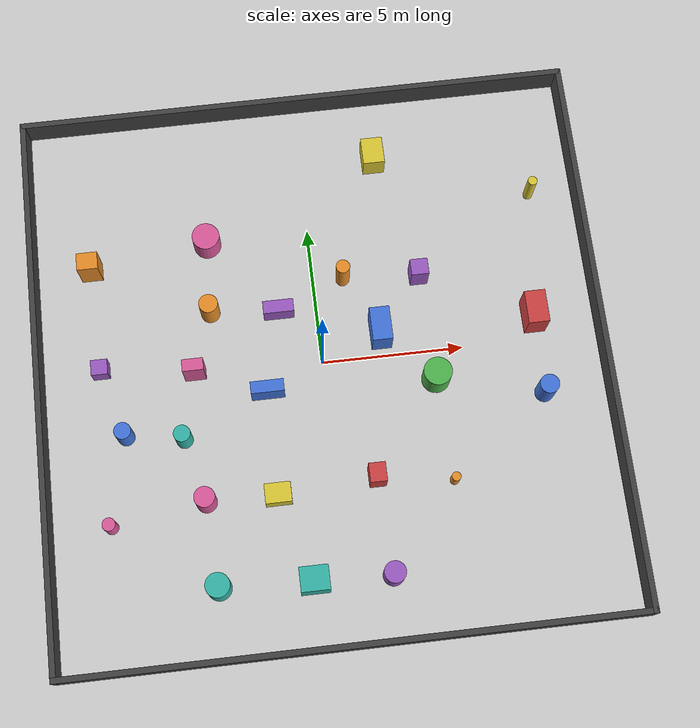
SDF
<?xml version="1.0"?>
<sdf version='1.10'>
  <world name='cluttered'>
    <physics name='1ms' type='ignored'>
      <max_step_size>0.001</max_step_size>
      <real_time_factor>1</real_time_factor>
      <real_time_update_rate>1000</real_time_update_rate>
    </physics>
    <plugin name='gz::sim::systems::Physics' filename='gz-sim-physics-system'/>
    <plugin name='gz::sim::systems::UserCommands'
            filename='gz-sim-user-commands-system'/>
    <plugin name='gz::sim::systems::SceneBroadcaster'
            filename='gz-sim-scene-broadcaster-system'/>
    <plugin name='gz::sim::systems::Contact'
            filename='gz-sim-contact-system'/>
    <plugin name='gz::sim::systems::Sensors'
            filename='gz-sim-sensors-system'>
      <render_engine>ogre2</render_engine>
    </plugin>
    <gravity>0 0 -9.8</gravity>
    <scene>
      <ambient>0.4 0.4 0.4 1</ambient>
      <background>0.7 0.7 0.7 1</background>
      <shadows>true</shadows>
    </scene>
    <light name='sun' type='directional'>
      <pose>0 0 10 0 0 0</pose>
      <cast_shadows>true</cast_shadows>
      <intensity>1</intensity>
      <direction>-0.5 0.1 -0.9</direction>
      <diffuse>0.8 0.8 0.8 1</diffuse>
      <specular>0.2 0.2 0.2 1</specular>
    </light>
    <model name='ground_plane'>
      <static>true</static>
      <link name='link'>
        <collision name='collision'>
          <geometry>
            <plane><normal>0 0 1</normal><size>100 100</size></plane>
          </geometry>
        </collision>
        <visual name='visual'>
          <geometry>
            <plane><normal>0 0 1</normal><size>100 100</size></plane>
          </geometry>
          <material>
            <ambient>0.8 0.8 0.8 1</ambient>
            <diffuse>0.8 0.8 0.8 1</diffuse>
          </material>
        </visual>
      </link>
    </model>
    <model name='obstacle_00'>
      <static>true</static>
      <pose>0.000 9.900 0.500 0 0 0</pose>
      <link name='link'>
        <collision name='collision'>
          <geometry><box><size>20.000 0.200 1.000</size></box></geometry>
        </collision>
        <visual name='visual'>
          <geometry><box><size>20.000 0.200 1.000</size></box></geometry>
          <material>
            <ambient>0.25 0.25 0.25 1</ambient>
            <diffuse>0.25 0.25 0.25 1</diffuse>
          </material>
        </visual>
      </link>
    </model>
    <model name='obstacle_01'>
      <static>true</static>
      <pose>0.000 -9.900 0.500 0 0 0</pose>
      <link name='link'>
        <collision name='collision'>
          <geometry><box><size>20.000 0.200 1.000</size></box></geometry>
        </collision>
        <visual name='visual'>
          <geometry><box><size>20.000 0.200 1.000</size></box></geometry>
          <material>
            <ambient>0.25 0.25 0.25 1</ambient>
            <diffuse>0.25 0.25 0.25 1</diffuse>
          </material>
        </visual>
      </link>
    </model>
    <model name='obstacle_02'>
      <static>true</static>
      <pose>9.900 0.000 0.500 0 0 0</pose>
      <link name='link'>
        <collision name='collision'>
          <geometry><box><size>0.200 20.000 1.000</size></box></geometry>
        </collision>
        <visual name='visual'>
          <geometry><box><size>0.200 20.000 1.000</size></box></geometry>
          <material>
            <ambient>0.25 0.25 0.25 1</ambient>
            <diffuse>0.25 0.25 0.25 1</diffuse>
          </material>
        </visual>
      </link>
    </model>
    <model name='obstacle_03'>
      <static>true</static>
      <pose>-9.900 0.000 0.500 0 0 0</pose>
      <link name='link'>
        <collision name='collision'>
          <geometry><box><size>0.200 20.000 1.000</size></box></geometry>
        </collision>
        <visual name='visual'>
          <geometry><box><size>0.200 20.000 1.000</size></box></geometry>
          <material>
            <ambient>0.25 0.25 0.25 1</ambient>
            <diffuse>0.25 0.25 0.25 1</diffuse>
          </material>
        </visual>
      </link>
    </model>
    <model name='obstacle_04'>
      <static>true</static>
      <pose>3.772 2.819 0.556 0 0 0</pose>
      <link name='link'>
        <collision name='collision'>
          <geometry><box><size>0.620 0.579 1.112</size></box></geometry>
        </collision>
        <visual name='visual'>
          <geometry><box><size>0.620 0.579 1.112</size></box></geometry>
          <material>
            <ambient>0.60 0.35 0.75 1</ambient>
            <diffuse>0.60 0.35 0.75 1</diffuse>
          </material>
        </visual>
      </link>
    </model>
    <model name='obstacle_05'>
      <static>true</static>
      <pose>-4.488 0.085 0.657 0 0 0</pose>
      <link name='link'>
        <collision name='collision'>
          <geometry><box><size>0.738 0.424 1.314</size></box></geometry>
        </collision>
        <visual name='visual'>
          <geometry><box><size>0.738 0.424 1.314</size></box></geometry>
          <material>
            <ambient>0.85 0.35 0.60 1</ambient>
            <diffuse>0.85 0.35 0.60 1</diffuse>
          </material>
        </visual>
      </link>
    </model>
    <model name='obstacle_06'>
      <static>true</static>
      <pose>7.629 -1.959 0.623 0 0 0</pose>
      <link name='link'>
        <collision name='collision'>
          <geometry><cylinder><radius>0.338</radius><length>1.246</length></cylinder></geometry>
        </collision>
        <visual name='visual'>
          <geometry><cylinder><radius>0.338</radius><length>1.246</length></cylinder></geometry>
          <material>
            <ambient>0.25 0.45 0.85 1</ambient>
            <diffuse>0.25 0.45 0.85 1</diffuse>
          </material>
        </visual>
      </link>
    </model>
    <model name='obstacle_07'>
      <static>true</static>
      <pose>-2.033 -4.549 0.340 0 0 0</pose>
      <link name='link'>
        <collision name='collision'>
          <geometry><box><size>0.909 0.692 0.681</size></box></geometry>
        </collision>
        <visual name='visual'>
          <geometry><box><size>0.909 0.692 0.681</size></box></geometry>
          <material>
            <ambient>0.85 0.78 0.20 1</ambient>
            <diffuse>0.85 0.78 0.20 1</diffuse>
          </material>
        </visual>
      </link>
    </model>
    <model name='obstacle_08'>
      <static>true</static>
      <pose>2.158 0.878 0.592 0 0 0</pose>
      <link name='link'>
        <collision name='collision'>
          <geometry><box><size>0.704 1.192 1.183</size></box></geometry>
        </collision>
        <visual name='visual'>
          <geometry><box><size>0.704 1.192 1.183</size></box></geometry>
          <material>
            <ambient>0.25 0.45 0.85 1</ambient>
            <diffuse>0.25 0.45 0.85 1</diffuse>
          </material>
        </visual>
      </link>
    </model>
    <model name='obstacle_09'>
      <static>true</static>
      <pose>-4.324 -7.466 0.574 0 0 0</pose>
      <link name='link'>
        <collision name='collision'>
          <geometry><cylinder><radius>0.422</radius><length>1.148</length></cylinder></geometry>
        </collision>
        <visual name='visual'>
          <geometry><cylinder><radius>0.422</radius><length>1.148</length></cylinder></geometry>
          <material>
            <ambient>0.20 0.70 0.65 1</ambient>
            <diffuse>0.20 0.70 0.65 1</diffuse>
          </material>
        </visual>
      </link>
    </model>
    <model name='obstacle_10'>
      <static>true</static>
      <pose>-7.073 -1.918 0.551 0 0 0</pose>
      <link name='link'>
        <collision name='collision'>
          <geometry><cylinder><radius>0.298</radius><length>1.102</length></cylinder></geometry>
        </collision>
        <visual name='visual'>
          <geometry><cylinder><radius>0.298</radius><length>1.102</length></cylinder></geometry>
          <material>
            <ambient>0.25 0.45 0.85 1</ambient>
            <diffuse>0.25 0.45 0.85 1</diffuse>
          </material>
        </visual>
      </link>
    </model>
    <model name='obstacle_11'>
      <static>true</static>
      <pose>-3.760 2.273 0.588 0 0 0</pose>
      <link name='link'>
        <collision name='collision'>
          <geometry><cylinder><radius>0.338</radius><length>1.177</length></cylinder></geometry>
        </collision>
        <visual name='visual'>
          <geometry><cylinder><radius>0.338</radius><length>1.177</length></cylinder></geometry>
          <material>
            <ambient>0.90 0.55 0.15 1</ambient>
            <diffuse>0.90 0.55 0.15 1</diffuse>
          </material>
        </visual>
      </link>
    </model>
    <model name='obstacle_12'>
      <static>true</static>
      <pose>1.405 -4.295 0.507 0 0 0</pose>
      <link name='link'>
        <collision name='collision'>
          <geometry><box><size>0.580 0.670 1.014</size></box></geometry>
        </collision>
        <visual name='visual'>
          <geometry><box><size>0.580 0.670 1.014</size></box></geometry>
          <material>
            <ambient>0.80 0.25 0.25 1</ambient>
            <diffuse>0.80 0.25 0.25 1</diffuse>
          </material>
        </visual>
      </link>
    </model>
    <model name='obstacle_13'>
      <static>true</static>
      <pose>2.696 7.528 0.472 0 0 0</pose>
      <link name='link'>
        <collision name='collision'>
          <geometry><box><size>0.774 0.983 0.945</size></box></geometry>
        </collision>
        <visual name='visual'>
          <geometry><box><size>0.774 0.983 0.945</size></box></geometry>
          <material>
            <ambient>0.85 0.78 0.20 1</ambient>
            <diffuse>0.85 0.78 0.20 1</diffuse>
          </material>
        </visual>
      </link>
    </model>
    <model name='obstacle_14'>
      <static>true</static>
      <pose>8.220 5.533 0.645 0 0 0</pose>
      <link name='link'>
        <collision name='collision'>
          <geometry><cylinder><radius>0.168</radius><length>1.289</length></cylinder></geometry>
        </collision>
        <visual name='visual'>
          <geometry><cylinder><radius>0.168</radius><length>1.289</length></cylinder></geometry>
          <material>
            <ambient>0.85 0.78 0.20 1</ambient>
            <diffuse>0.85 0.78 0.20 1</diffuse>
          </material>
        </visual>
      </link>
    </model>
    <model name='obstacle_15'>
      <static>true</static>
      <pose>7.639 0.860 0.614 0 0 0</pose>
      <link name='link'>
        <collision name='collision'>
          <geometry><box><size>0.738 1.166 1.227</size></box></geometry>
        </collision>
        <visual name='visual'>
          <geometry><box><size>0.738 1.166 1.227</size></box></geometry>
          <material>
            <ambient>0.80 0.25 0.25 1</ambient>
            <diffuse>0.80 0.25 0.25 1</diffuse>
          </material>
        </visual>
      </link>
    </model>
    <model name='obstacle_16'>
      <static>true</static>
      <pose>-7.861 4.293 0.638 0 0 0</pose>
      <link name='link'>
        <collision name='collision'>
          <geometry><box><size>0.739 0.621 1.277</size></box></geometry>
        </collision>
        <visual name='visual'>
          <geometry><box><size>0.739 0.621 1.277</size></box></geometry>
          <material>
            <ambient>0.90 0.55 0.15 1</ambient>
            <diffuse>0.90 0.55 0.15 1</diffuse>
          </material>
        </visual>
      </link>
    </model>
    <model name='obstacle_17'>
      <static>true</static>
      <pose>-1.121 -7.599 0.555 0 0 0</pose>
      <link name='link'>
        <collision name='collision'>
          <geometry><box><size>0.993 0.841 1.110</size></box></geometry>
        </collision>
        <visual name='visual'>
          <geometry><box><size>0.993 0.841 1.110</size></box></geometry>
          <material>
            <ambient>0.20 0.70 0.65 1</ambient>
            <diffuse>0.20 0.70 0.65 1</diffuse>
          </material>
        </visual>
      </link>
    </model>
    <model name='obstacle_18'>
      <static>true</static>
      <pose>-7.784 -5.014 0.422 0 0 0</pose>
      <link name='link'>
        <collision name='collision'>
          <geometry><cylinder><radius>0.230</radius><length>0.844</length></cylinder></geometry>
        </collision>
        <visual name='visual'>
          <geometry><cylinder><radius>0.230</radius><length>0.844</length></cylinder></geometry>
          <material>
            <ambient>0.85 0.35 0.60 1</ambient>
            <diffuse>0.85 0.35 0.60 1</diffuse>
          </material>
        </visual>
      </link>
    </model>
    <model name='obstacle_19'>
      <static>true</static>
      <pose>-1.337 2.028 0.398 0 0 0</pose>
      <link name='link'>
        <collision name='collision'>
          <geometry><box><size>1.080 0.458 0.796</size></box></geometry>
        </collision>
        <visual name='visual'>
          <geometry><box><size>1.080 0.458 0.796</size></box></geometry>
          <material>
            <ambient>0.60 0.35 0.75 1</ambient>
            <diffuse>0.60 0.35 0.75 1</diffuse>
          </material>
        </visual>
      </link>
    </model>
    <model name='obstacle_20'>
      <static>true</static>
      <pose>-4.493 -4.511 0.599 0 0 0</pose>
      <link name='link'>
        <collision name='collision'>
          <geometry><cylinder><radius>0.361</radius><length>1.198</length></cylinder></geometry>
        </collision>
        <visual name='visual'>
          <geometry><cylinder><radius>0.361</radius><length>1.198</length></cylinder></geometry>
          <material>
            <ambient>0.85 0.35 0.60 1</ambient>
            <diffuse>0.85 0.35 0.60 1</diffuse>
          </material>
        </visual>
      </link>
    </model>
    <model name='obstacle_21'>
      <static>true</static>
      <pose>-3.638 4.877 0.474 0 0 0</pose>
      <link name='link'>
        <collision name='collision'>
          <geometry><cylinder><radius>0.488</radius><length>0.948</length></cylinder></geometry>
        </collision>
        <visual name='visual'>
          <geometry><cylinder><radius>0.488</radius><length>0.948</length></cylinder></geometry>
          <material>
            <ambient>0.85 0.35 0.60 1</ambient>
            <diffuse>0.85 0.35 0.60 1</diffuse>
          </material>
        </visual>
      </link>
    </model>
    <model name='obstacle_22'>
      <static>true</static>
      <pose>-7.775 0.546 0.340 0 0 0</pose>
      <link name='link'>
        <collision name='collision'>
          <geometry><box><size>0.582 0.544 0.680</size></box></geometry>
        </collision>
        <visual name='visual'>
          <geometry><box><size>0.582 0.544 0.680</size></box></geometry>
          <material>
            <ambient>0.60 0.35 0.75 1</ambient>
            <diffuse>0.60 0.35 0.75 1</diffuse>
          </material>
        </visual>
      </link>
    </model>
    <model name='obstacle_23'>
      <static>true</static>
      <pose>-5.065 -2.241 0.563 0 0 0</pose>
      <link name='link'>
        <collision name='collision'>
          <geometry><cylinder><radius>0.295</radius><length>1.126</length></cylinder></geometry>
        </collision>
        <visual name='visual'>
          <geometry><cylinder><radius>0.295</radius><length>1.126</length></cylinder></geometry>
          <material>
            <ambient>0.20 0.70 0.65 1</ambient>
            <diffuse>0.20 0.70 0.65 1</diffuse>
          </material>
        </visual>
      </link>
    </model>
    <model name='obstacle_24'>
      <static>true</static>
      <pose>3.899 -1.043 0.552 0 0 0</pose>
      <link name='link'>
        <collision name='collision'>
          <geometry><cylinder><radius>0.499</radius><length>1.105</length></cylinder></geometry>
        </collision>
        <visual name='visual'>
          <geometry><cylinder><radius>0.499</radius><length>1.105</length></cylinder></geometry>
          <material>
            <ambient>0.30 0.70 0.30 1</ambient>
            <diffuse>0.30 0.70 0.30 1</diffuse>
          </material>
        </visual>
      </link>
    </model>
    <model name='obstacle_25'>
      <static>true</static>
      <pose>1.075 3.030 0.691 0 0 0</pose>
      <link name='link'>
        <collision name='collision'>
          <geometry><cylinder><radius>0.246</radius><length>1.382</length></cylinder></geometry>
        </collision>
        <visual name='visual'>
          <geometry><cylinder><radius>0.246</radius><length>1.382</length></cylinder></geometry>
          <material>
            <ambient>0.90 0.55 0.15 1</ambient>
            <diffuse>0.90 0.55 0.15 1</diffuse>
          </material>
        </visual>
      </link>
    </model>
    <model name='obstacle_26'>
      <static>true</static>
      <pose>-2.015 -0.881 0.496 0 0 0</pose>
      <link name='link'>
        <collision name='collision'>
          <geometry><box><size>1.161 0.426 0.991</size></box></geometry>
        </collision>
        <visual name='visual'>
          <geometry><box><size>1.161 0.426 0.991</size></box></geometry>
          <material>
            <ambient>0.25 0.45 0.85 1</ambient>
            <diffuse>0.25 0.45 0.85 1</diffuse>
          </material>
        </visual>
      </link>
    </model>
    <model name='obstacle_27'>
      <static>true</static>
      <pose>1.559 -7.683 0.482 0 0 0</pose>
      <link name='link'>
        <collision name='collision'>
          <geometry><cylinder><radius>0.375</radius><length>0.964</length></cylinder></geometry>
        </collision>
        <visual name='visual'>
          <geometry><cylinder><radius>0.375</radius><length>0.964</length></cylinder></geometry>
          <material>
            <ambient>0.60 0.35 0.75 1</ambient>
            <diffuse>0.60 0.35 0.75 1</diffuse>
          </material>
        </visual>
      </link>
    </model>
    <model name='obstacle_28'>
      <static>true</static>
      <pose>4.056 -4.694 0.357 0 0 0</pose>
      <link name='link'>
        <collision name='collision'>
          <geometry><cylinder><radius>0.161</radius><length>0.713</length></cylinder></geometry>
        </collision>
        <visual name='visual'>
          <geometry><cylinder><radius>0.161</radius><length>0.713</length></cylinder></geometry>
          <material>
            <ambient>0.90 0.55 0.15 1</ambient>
            <diffuse>0.90 0.55 0.15 1</diffuse>
          </material>
        </visual>
      </link>
    </model>
  </world>
</sdf>
